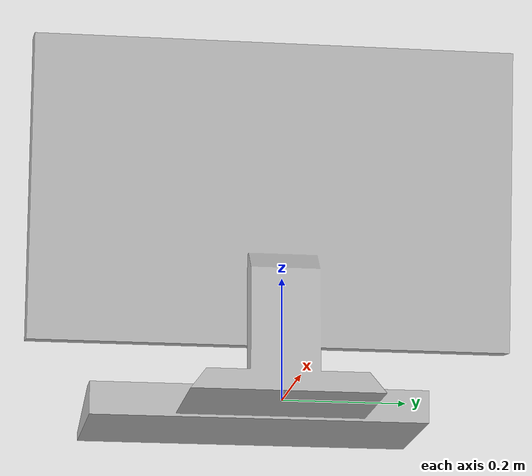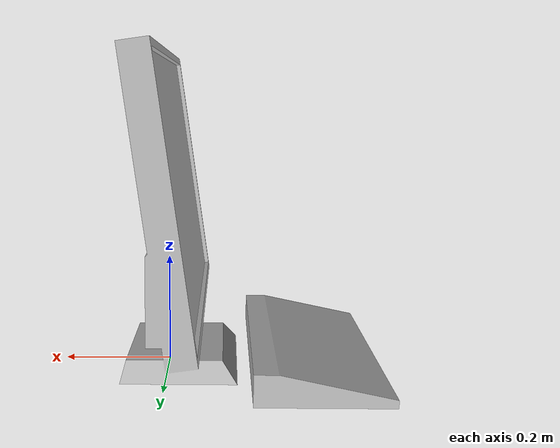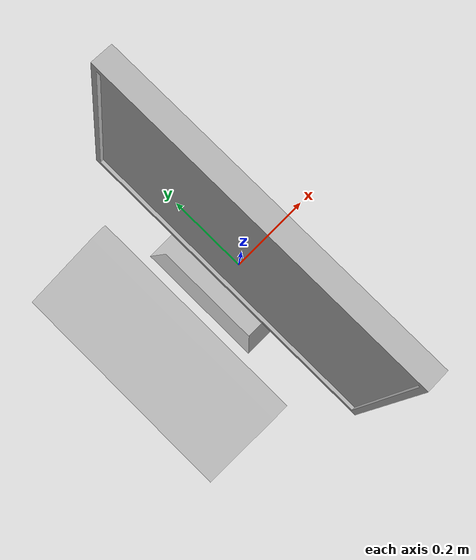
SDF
<?xml version="1.0"?>

<sdf version="1.6">
  <model name='MonitorAndKeyboard'>
   <static>true</static>
    <link name="body">
      <pose>0 0 0 0 0 0</pose>

      <visual name="visual_monitor">
        <geometry>
          <mesh>
            <uri>model://MonitorAndKeyboard/meshes/monitor.obj</uri>
            <scale>0.20 0.20 0.20</scale>
          </mesh>
        </geometry>
        <pose>0 0 0 0 0 0</pose>
      </visual>

      <collision name="collision_monitor">
        <geometry>
          <mesh>
            <uri>model://MonitorAndKeyboard/meshes/monitor.obj</uri>
            <scale>0.20 0.20 0.20</scale>
          </mesh>
        </geometry>
        <pose>0 0 0 0 0 0</pose>
      </collision>

      <visual name="visual_keyboard">
        <geometry>
          <mesh>
            <uri>model://MonitorAndKeyboard/meshes/keyboard.obj</uri>
            <scale>0.20 0.20 0.20</scale>
          </mesh>
        </geometry>
        <pose>-0.27 0 0 0 0 0</pose>
      </visual>

      <collision name="collision_keyboard">
        <geometry>
          <mesh>
            <uri>model://MonitorAndKeyboard/meshes/keyboard.obj</uri>
            <scale>0.20 0.20 0.20</scale>
          </mesh>
        </geometry>
        <pose>-0.27 0 0 0 0 0</pose>
      </collision>

    </link>
  </model>
</sdf>
